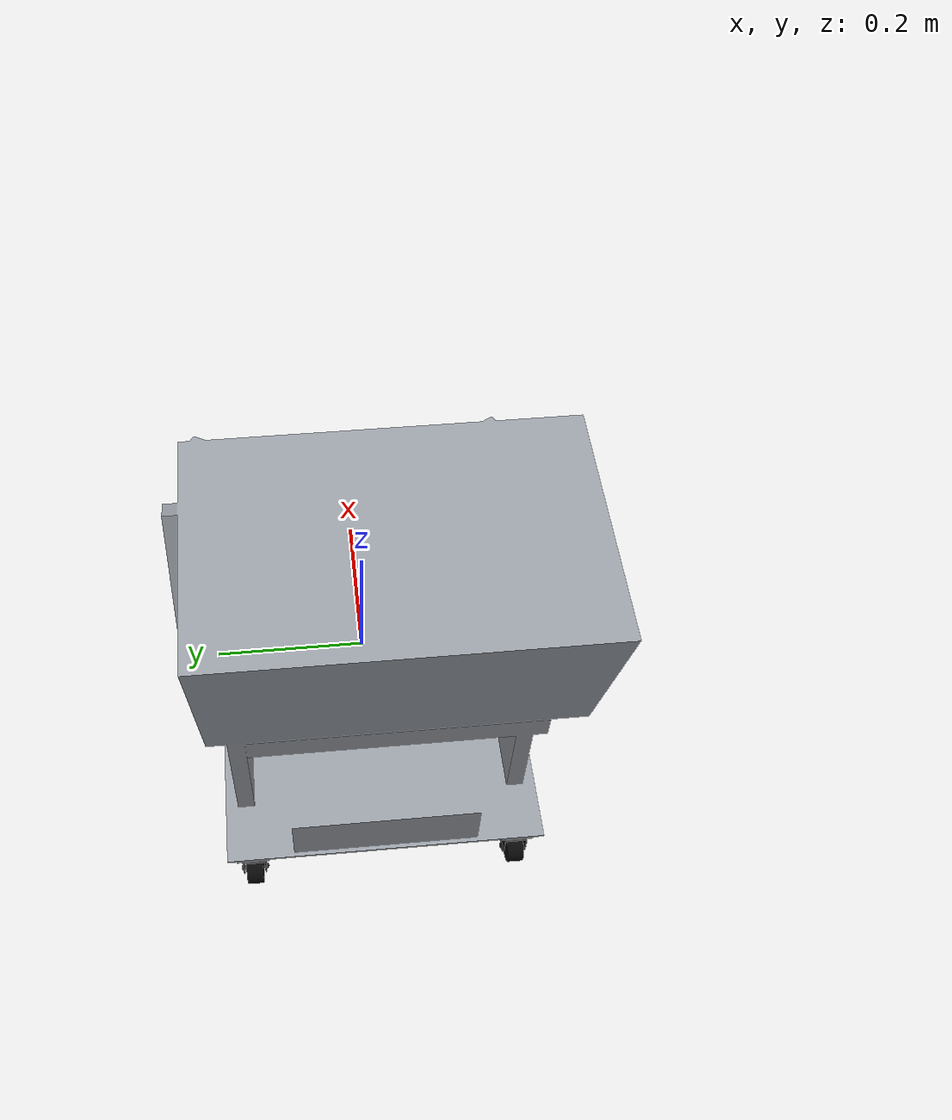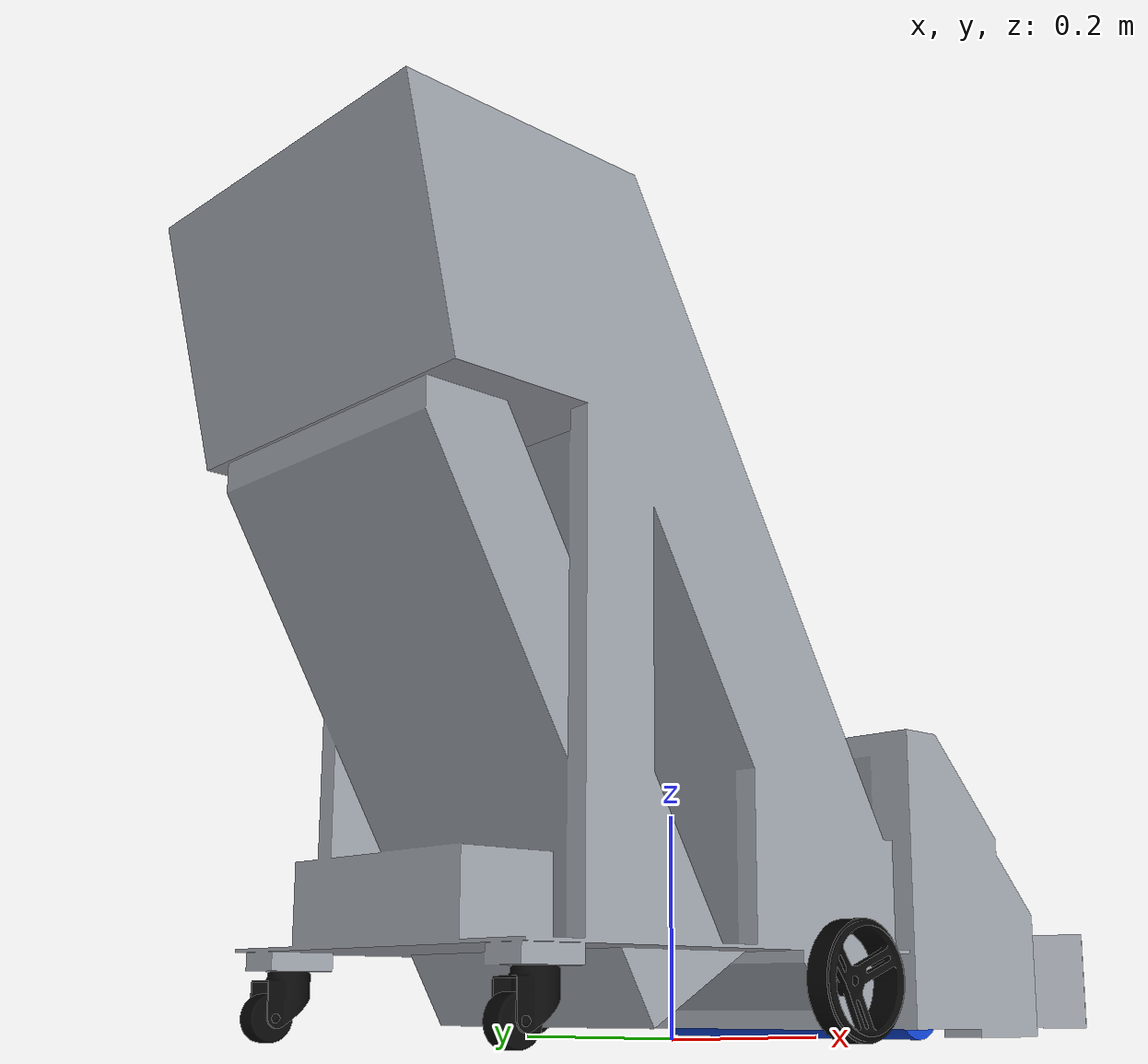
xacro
<?xml version="1.0"?>
<robot xmlns:xacro="http://www.ros.org/wiki/xacro" name="scrobot">

  <xacro:arg name="enable_magnetometer" default="true"/>
  <xacro:arg name="drive_contact_mu" default="5.0"/>
  <xacro:arg name="caster_contact_mu" default="0.05"/>
  <xacro:arg
    name="controller_params"
    default="$(find scrobot_control)/config/controllers.yaml"/>

  <!-- Real robot geometry -->
  <xacro:include
    filename="$(find scrobot_description)/urdf/scrobot.urdf.xacro"/>

  <!-- Gazebo sensors -->
  <xacro:include
    filename="$(find scrobot_simulation)/urdf/sensors_gazebo.xacro"/>

  <!-- Gazebo physical properties -->
  <xacro:include
    filename="$(find scrobot_simulation)/urdf/physics_gazebo.xacro"/>

  <!-- Simulated magnetic sensor is aligned with base_link. Keep mag_link in
       TF even if SDFormat reduces fixed joints into their parent link. -->
  <xacro:if value="$(arg enable_magnetometer)">
    <link name="mag_link"/>
    <joint name="mag_mount_joint" type="fixed">
      <parent link="base_link"/>
      <child link="mag_link"/>
      <origin xyz="0 0 0" rpy="0 0 0"/>
    </joint>
  </xacro:if>

  <xacro:scrobot_gazebo_sensors enable_magnetometer="$(arg enable_magnetometer)"/>
  <xacro:scrobot_gazebo_physics
    drive_contact_mu="$(arg drive_contact_mu)"
    caster_contact_mu="$(arg caster_contact_mu)"/>

  <!-- Gazebo-only ground-truth odometry. Keep simulation/evaluation plugins
       out of scrobot_description so the real robot URDF stays hardware-only. -->
  <gazebo>
    <plugin
      filename="gz-sim-odometry-publisher-system"
      name="gz::sim::systems::OdometryPublisher">
      <odom_frame>world</odom_frame>
      <robot_base_frame>base_footprint</robot_base_frame>
      <odom_publish_frequency>100.0</odom_publish_frequency>
      <odom_topic>/evaluation/scrobot/ground_truth_odom_gz</odom_topic>
      <tf_topic>/evaluation/scrobot/ground_truth_tf_gz</tf_topic>
      <dimensions>2</dimensions>
      <gaussian_noise>0.0</gaussian_noise>
    </plugin>
  </gazebo>

  <ros2_control name="GazeboSimSystem" type="system">
    <hardware>
      <plugin>gz_ros2_control/GazeboSimSystem</plugin>
    </hardware>

    <joint name="left_wheel_joint">
      <command_interface name="velocity"/>
      <state_interface name="position"/>
      <state_interface name="velocity"/>
    </joint>

    <joint name="right_wheel_joint">
      <command_interface name="velocity"/>
      <state_interface name="position"/>
      <state_interface name="velocity"/>
    </joint>

    <joint name="left_caster_swivel_joint">
      <state_interface name="position"/>
      <state_interface name="velocity"/>
    </joint>
    <joint name="left_caster_wheel_joint">
      <state_interface name="position"/>
      <state_interface name="velocity"/>
    </joint>
    <joint name="right_caster_swivel_joint">
      <state_interface name="position"/>
      <state_interface name="velocity"/>
    </joint>
    <joint name="right_caster_wheel_joint">
      <state_interface name="position"/>
      <state_interface name="velocity"/>
    </joint>
  </ros2_control>

  <gazebo>
    <plugin
      filename="libgz_ros2_control-system.so"
      name="gz_ros2_control::GazeboSimROS2ControlPlugin">
      <parameters>$(arg controller_params)</parameters>
    </plugin>
  </gazebo>
</robot>

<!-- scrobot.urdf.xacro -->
<robot xmlns:xacro="http://www.ros.org/wiki/xacro" name="scrobot">

  <material name="aluminum_grey">
    <color rgba="0.60 0.62 0.65 1.0"/>
  </material>

  <material name="rubber_black">
    <color rgba="0.03 0.03 0.03 1.0"/>
  </material>

  <material name="plastic_blue">
    <color rgba="0.05 0.25 0.80 1.0"/>
  </material>

  <material name="sensor_blue">
    <color rgba="0.05 0.15 0.90 1.0"/>
  </material>

  <xacro:property name="wheel_radius" value="0.050"/>
  <xacro:property name="wheel_width" value="0.030"/>
  <xacro:property name="wheel_separation" value="0.420"/>

  <!-- Physical ros2_control is opt-in; simulation keeps the hardware-neutral
       description and injects its own Gazebo control system. -->
  <xacro:arg name="use_real_hardware" default="false"/>
  <xacro:arg name="serial_port" default="/dev/ttyTHS1"/>
  <xacro:arg name="baud_rate" default="1000000"/>

  <!-- Simulation can disable robot STL rendering without changing physics. -->
  <xacro:arg name="robot_visual_mode" default="full"/>
  <xacro:property name="scrobot_visual_mode" value="$(arg robot_visual_mode)"/>
  <xacro:arg name="wheel_collision_width" default="0.030"/>
  <xacro:property name="wheel_collision_width" value="$(arg wheel_collision_width)"/>

  <xacro:property name="caster_x" value="-0.300"/>
  <xacro:property name="caster_y" value="0.160"/>
  <xacro:property name="caster_z" value="0.0085"/>
  <xacro:property name="caster_radius" value="0.020"/>
  <xacro:property name="caster_width" value="0.020"/>
  <xacro:property name="caster_trail" value="-0.020"/>
  <xacro:property name="caster_axle_drop" value="0.0385"/>
  <xacro:property name="caster_fork_com_x" value="-0.00525"/>
  <xacro:property name="caster_fork_com_y" value="0.0"/>
  <xacro:property name="caster_fork_com_z" value="-0.01513"/>

  <xacro:property name="collector_x" value="0.165"/>
  <xacro:property name="collector_y" value="0.0"/>
  <xacro:property name="collector_z" value="-0.020"/>

  <!-- Measured D435i tripod-screw mount relative to base_link. -->
  <xacro:property name="camera_x" value="0.110"/>
  <xacro:property name="camera_y" value="0.0"/>
  <xacro:property name="camera_z" value="0.2275"/>
  <xacro:property name="camera_roll" value="0.0"/>
  <!-- Positive pitch points the optical axis downward in this URDF chain. -->
  <xacro:property name="camera_pitch" value="${15.0 * pi / 180.0}"/>
  <xacro:property name="camera_yaw" value="0.0"/>

  <xacro:include filename="$(find scrobot_description)/urdf/base.xacro"/>
  <xacro:include filename="$(find scrobot_description)/urdf/wheels.xacro"/>
  <xacro:include filename="$(find scrobot_description)/urdf/casters.xacro"/>
  <xacro:include filename="$(find scrobot_description)/urdf/collector.xacro"/>
  <xacro:include filename="$(find scrobot_description)/urdf/sensors.xacro"/>
  <xacro:include filename="$(find scrobot_description)/urdf/ros2_control_real.xacro"/>

  <xacro:scrobot_base/>
  <xacro:scrobot_wheels/>
  <xacro:scrobot_casters/>
  <xacro:scrobot_collector/>
  <xacro:scrobot_sensors/>

  <xacro:if value="$(arg use_real_hardware)">
    <xacro:scrobot_real_ros2_control
      serial_port="$(arg serial_port)"
      baud_rate="$(arg baud_rate)"/>
  </xacro:if>

</robot>

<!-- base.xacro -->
<robot xmlns:xacro="http://www.ros.org/wiki/xacro">
  <xacro:macro name="scrobot_base">
    <link name="base_footprint">
      <inertial>
        <origin xyz="0 0 0" rpy="0 0 0"/>
        <mass value="0.0001"/>
        <inertia ixx="1e-8" ixy="0" ixz="0" iyy="1e-8" iyz="0" izz="1e-8"/>
      </inertial>
    </link>

    <joint name="base_footprint_joint" type="fixed">
      <parent link="base_footprint"/>
      <child link="base_link"/>
      <origin xyz="0 0 ${wheel_radius}" rpy="0 0 0"/>
    </joint>

    <link name="base_link">
      <inertial>
        <origin xyz="-0.060 0.002 0.195" rpy="0 0 0"/>
        <mass value="14.14"/>
        <inertia
          ixx="0.766"
          ixy="0.00107"
          ixz="0.338"
          iyy="1.060"
          iyz="-0.00308"
          izz="0.727"/>
      </inertial>

      <xacro:if value="${scrobot_visual_mode == 'full'}">
      <visual name="base_visual">
        <origin xyz="0 0 0" rpy="0 0 0"/>
        <geometry>
          <mesh filename="package://scrobot_description/meshes/visual/base.STL" scale="1 1 1"/>
        </geometry>

        <material name="aluminum_grey"/>

      </visual>
      </xacro:if>

      <!-- Lab-only proxy: the real STL is far more expensive and not
           visible to the D435i camera mounted above this low footprint. -->
      <xacro:if value="${scrobot_visual_mode == 'simple'}">
        <visual name="base_proxy_visual">
          <origin xyz="-0.115 0 0.095" rpy="0 0 0"/>
          <!-- Front of proxy is x=0.085 m, behind the D435i mount at
               x=0.110 m, so the simplified mesh cannot enter forward RGB FOV. -->
          <geometry><box size="0.40 0.36 0.16"/></geometry>
          <material name="aluminum_grey"/>
        </visual>
      </xacro:if>

      <collision name="base_collision">
        <origin xyz="0 0 0" rpy="0 0 0"/>
        <geometry>
          <mesh filename="package://scrobot_description/meshes/collision/base_collision.STL" scale="1 1 1"/>
        </geometry>
      </collision>
    </link>
  </xacro:macro>
</robot>

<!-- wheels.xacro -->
<robot xmlns:xacro="http://www.ros.org/wiki/xacro">
  <xacro:macro name="scrobot_drive_wheel" params="name y mesh_file">
    <link name="${name}_wheel_link">
      <inertial>
        <origin xyz="0 0 0" rpy="0 0 0"/>
        <mass value="0.155"/>
        <inertia
          ixx="1.37e-4"
          ixy="0"
          ixz="0"
          iyy="2.55e-4"
          iyz="0"
          izz="1.37e-4"/>
      </inertial>

      <xacro:if value="${scrobot_visual_mode == 'full'}">
      <visual name="${name}_wheel_visual">
        <origin xyz="0 0 0" rpy="0 0 0"/>
        <geometry>
          <mesh filename="package://scrobot_description/meshes/visual/${mesh_file}" scale="1 1 1"/>
        </geometry>
        <material name="rubber_black"/>
      </visual>
      </xacro:if>

      <collision name="${name}_wheel_collision">
        <origin xyz="0 0 0" rpy="${pi/2} 0 0"/>
        <geometry>
          <cylinder radius="${wheel_radius}" length="${wheel_collision_width}"/>
        </geometry>
      </collision>
    </link>

    <joint name="${name}_wheel_joint" type="continuous">
      <parent link="base_link"/>
      <child link="${name}_wheel_link"/>
      <origin xyz="0 ${y} 0" rpy="0 0 0"/>
      <axis xyz="0 1 0"/>
      <dynamics damping="${wheel_joint_damping}" friction="0.0"/>
    </joint>
  </xacro:macro>

  <xacro:macro name="scrobot_wheels">
    <xacro:scrobot_drive_wheel name="left" y="${wheel_separation / 2.0}" mesh_file="left_wheel.STL"/>
    <xacro:scrobot_drive_wheel name="right" y="${-wheel_separation / 2.0}" mesh_file="right_wheel.STL"/>
  </xacro:macro>
</robot>

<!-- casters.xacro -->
<robot xmlns:xacro="http://www.ros.org/wiki/xacro">
  <xacro:macro name="scrobot_caster" params="name y">

    <link name="${name}_caster_link">
      <inertial>
        <origin
          xyz="${caster_fork_com_x} ${caster_fork_com_y} ${caster_fork_com_z}"
          rpy="0 0 0"/>
        <mass value="0.0561"/>
        <inertia
          ixx="1.74e-5"
          ixy="0"
          ixz="-2.98e-6"
          iyy="1.81e-5"
          iyz="0"
          izz="1.83e-5"/>
      </inertial>

      <xacro:if value="${scrobot_visual_mode == 'full'}">
      <visual name="${name}_caster_fork_visual">
        <origin
          xyz="0 0 0"
          rpy="0 0 0"/>
        <geometry>
          <mesh filename="package://scrobot_description/meshes/visual/caster_fork.STL" scale="1 1 1"/>
        </geometry>

        <material name="rubber_black"/>

      </visual>
      </xacro:if>
    </link>

    <joint name="${name}_caster_swivel_joint" type="continuous">
      <parent link="base_link"/>
      <child link="${name}_caster_link"/>
      <origin xyz="${caster_x} ${y} ${caster_z}" rpy="0 0 0"/>
      <axis xyz="0 0 1"/>
      <dynamics damping="0.002" friction="0.0"/>
    </joint>

    <link name="${name}_caster_wheel_link">
      <inertial>
        <origin xyz="0 0 0" rpy="0 0 0"/>
        <mass value="0.0255"/>
        <inertia
          ixx="3.39e-6"
          ixy="0"
          ixz="0"
          iyy="4.96e-6"
          iyz="0"
          izz="3.39e-6"/>
      </inertial>

      <xacro:if value="${scrobot_visual_mode == 'full'}">
      <visual name="${name}_caster_wheel_visual">
        <origin xyz="0 0 0" rpy="0 0 0"/>
        <geometry>
          <mesh filename="package://scrobot_description/meshes/visual/caster_wheel.STL" scale="1 1 1"/>
        </geometry>

        <material name="rubber_black"/>

      </visual>
      </xacro:if>

      <collision name="${name}_caster_wheel_collision">
        <origin xyz="0 0 0" rpy="${pi/2} 0 0"/>
        <geometry>
          <cylinder radius="${caster_radius}" length="${caster_width}"/>
        </geometry>
      </collision>
    </link>

    <joint name="${name}_caster_wheel_joint" type="continuous">
      <parent link="${name}_caster_link"/>
      <child link="${name}_caster_wheel_link"/>
      <origin xyz="${caster_trail} 0 ${-caster_axle_drop}" rpy="0 0 0"/>
      <axis xyz="0 1 0"/>
      <dynamics damping="0.0002" friction="0.0"/>
    </joint>
  </xacro:macro>

  <xacro:macro name="scrobot_casters">
    <xacro:scrobot_caster name="left" y="${caster_y}"/>
    <xacro:scrobot_caster name="right" y="${-caster_y}"/>
  </xacro:macro>
</robot>

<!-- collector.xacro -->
<robot xmlns:xacro="http://www.ros.org/wiki/xacro">
  <xacro:macro name="scrobot_collector">
    <link name="collector_link">
      <inertial>
        <origin xyz="0 -0.0023 0" rpy="0 0 0"/>
        <mass value="0.150"/>
        <inertia
          ixx="1.24e-3"
          ixy="0"
          ixz="0"
          iyy="6.41e-5"
          iyz="0"
          izz="1.24e-3"/>
      </inertial>

      <xacro:if value="${scrobot_visual_mode == 'full'}">
      <visual name="collector_visual">
        <origin xyz="0 0 0" rpy="0 0 0"/>
        <geometry>
          <mesh filename="package://scrobot_description/meshes/visual/collector.STL" scale="1 1 1"/>
        </geometry>

        <material name="plastic_blue"/>
      </visual>
      </xacro:if>
    </link>

    <joint name="collector_joint" type="fixed">
      <parent link="base_link"/>
      <child link="collector_link"/>
      <origin xyz="${collector_x} ${collector_y} ${collector_z}" rpy="0 0 0"/>
    </joint>

    <link name="pickup_link"/>

    <joint name="pickup_joint" type="fixed">
      <parent link="collector_link"/>
      <child link="pickup_link"/>
      <origin xyz="0 0 0" rpy="0 0 0"/>
    </joint>
  </xacro:macro>
</robot>

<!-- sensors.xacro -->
<robot xmlns:xacro="http://www.ros.org/wiki/xacro">

  <xacro:include
    filename="$(find scrobot_description)/urdf/realsense_d435i.xacro"/>

  <xacro:macro name="scrobot_sensors">
    <!-- Intel RealSense D435i. Internal camera/IMU frame geometry lives in
         realsense_d435i.xacro; this origin is the measured robot mount. -->
    <xacro:scrobot_d435i parent="base_link" name="camera">
      <origin
        xyz="${camera_x} ${camera_y} ${camera_z}"
        rpy="${camera_roll} ${camera_pitch} ${camera_yaw}"/>
    </xacro:scrobot_d435i>
  </xacro:macro>

</robot>

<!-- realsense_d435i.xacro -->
<robot xmlns:xacro="http://www.ros.org/wiki/xacro">

  <xacro:macro name="d435i_tiny_inertial">
    <inertial>
      <origin xyz="0 0 0" rpy="0 0 0"/>
      <mass value="0.0001"/>
      <inertia
        ixx="1e-8" ixy="0" ixz="0"
        iyy="1e-8" iyz="0"
        izz="1e-8"/>
    </inertial>
  </xacro:macro>

  <xacro:macro
    name="scrobot_d435i"
    params="parent name:=camera mesh_file:=package://scrobot_description/meshes/visual/d435i.STL *origin">

    <!-- Physical tripod screw / robot mounting reference       -->

    <link name="${name}_bottom_screw_frame">
      <xacro:d435i_tiny_inertial/>

      <!--
        Keep the existing project mesh convention: the visual mesh
        is located at the tripod screw frame.
      -->
      <xacro:if value="${scrobot_visual_mode == 'full'}">
      <visual name="${name}_d435i_visual">
        <origin xyz="0 0 0" rpy="0 0 0"/>
        <geometry>
          <mesh filename="${mesh_file}" scale="1 1 1"/>
        </geometry>
        <material name="sensor_blue"/>
      </visual>
      </xacro:if>
    </link>

    <joint name="${name}_mount_joint" type="fixed">
      <parent link="${parent}"/>
      <child link="${name}_bottom_screw_frame"/>
      <xacro:insert_block name="origin"/>
    </joint>

    <!-- RealSense base frame: nominal depth / left-IR origin   -->

    <link name="${name}_link">
      <xacro:d435i_tiny_inertial/>
    </link>

    <joint name="${name}_link_joint" type="fixed">
      <parent link="${name}_bottom_screw_frame"/>
      <child link="${name}_link"/>
      <origin xyz="0.0106 0.0175 0.0125" rpy="0 0 0"/>
    </joint>

    <!-- Depth                                                  -->

    <link name="${name}_depth_frame"/>

    <joint name="${name}_depth_joint" type="fixed">
      <parent link="${name}_link"/>
      <child link="${name}_depth_frame"/>
      <origin xyz="0 0 0" rpy="0 0 0"/>
    </joint>

    <link name="${name}_depth_optical_frame"/>

    <joint name="${name}_depth_optical_joint" type="fixed">
      <parent link="${name}_depth_frame"/>
      <child link="${name}_depth_optical_frame"/>
      <origin xyz="0 0 0" rpy="${-pi/2} 0 ${-pi/2}"/>
    </joint>

    <!-- Color                                                  -->

    <link name="${name}_color_frame"/>

    <joint name="${name}_color_joint" type="fixed">
      <parent link="${name}_link"/>
      <child link="${name}_color_frame"/>

      <!--
        Official RealSense nominal simulation extrinsic.
        Replace with values measured from your exact camera only if
        you intentionally want unit-specific calibration in Gazebo.
      -->
      <origin xyz="0 0.015 0" rpy="0 0 0"/>
    </joint>

    <link name="${name}_color_optical_frame"/>

    <joint name="${name}_color_optical_joint" type="fixed">
      <parent link="${name}_color_frame"/>
      <child link="${name}_color_optical_frame"/>
      <origin xyz="0 0 0" rpy="${-pi/2} 0 ${-pi/2}"/>
    </joint>

    <!-- Combined D435i IMU frame                               -->

    <link name="${name}_imu_frame"/>

    <joint name="${name}_imu_joint" type="fixed">
      <parent link="${name}_link"/>
      <child link="${name}_imu_frame"/>
      <origin xyz="-0.01174 -0.00552 0.00510" rpy="0 0 0"/>
    </joint>

    <link name="${name}_imu_optical_frame"/>

    <joint name="${name}_imu_optical_joint" type="fixed">
      <parent link="${name}_imu_frame"/>
      <child link="${name}_imu_optical_frame"/>
      <origin xyz="0 0 0" rpy="${-pi/2} 0 ${-pi/2}"/>
    </joint>

  </xacro:macro>

</robot>
